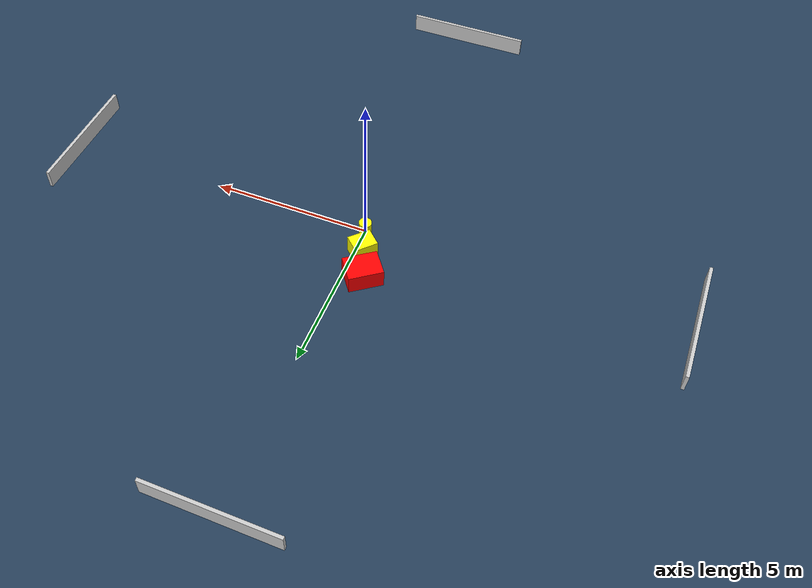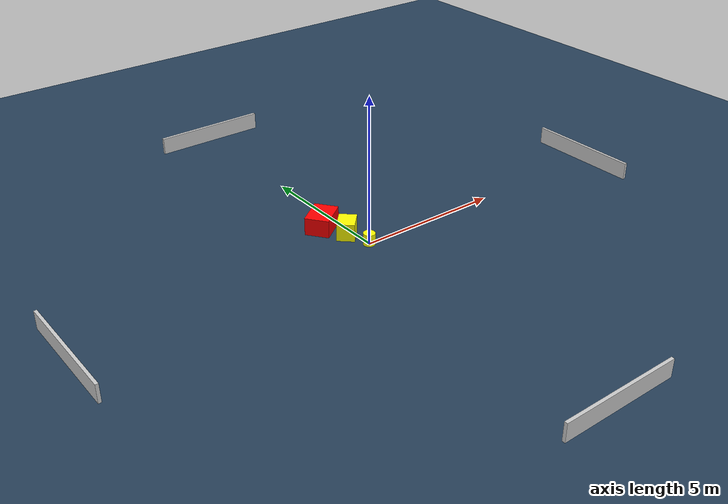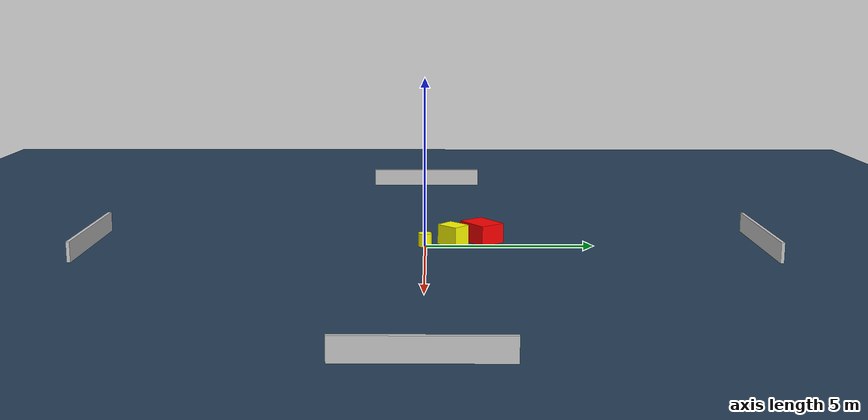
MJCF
<?xml version="1.0" ?>
<mujoco model="generated_environment">
  <option timestep="0.01" integrator="RK4" cone="elliptic"/>
  <default>
    <geom density="1"/>
  </default>
  <asset>
    <texture builtin="gradient" height="3072" name="skybox" rgb1="0.3 0.5 0.7" rgb2="0 0 0" type="skybox" width="512"/>
    <texture builtin="checker" height="300" name="groundplane" rgb1="0.2 0.3 0.4" rgb2="0.1 0.2 0.3" type="2d" width="300"/>
    <material name="groundplane" reflectance="0.2" texrepeat="5 5" texture="groundplane"/>
  </asset>
  <worldbody>
    <light dir="0 0 -1" directional="true" pos="0 0 1.5"/>
    <geom condim="3" friction="0.5 0.005 0.001" material="groundplane" name="floor" pos="0 0 0" size="0 0 0.05" type="plane"/>
    <body name="walls">
      <geom name="wall_1" condim="4" pos="-10.0 0.0 0.3" rgba="0.800000011920929 0.800000011920929 0.800000011920929 1.0" size="0.05 2.0 0.3" type="box"/>
      <geom name="wall_2" condim="4" pos="10.0 0.0 0.3" rgba="0.800000011920929 0.800000011920929 0.800000011920929 1.0" size="0.05 2.0 0.3" type="box"/>
      <geom name="wall_3" condim="4" pos="0.0 -10.0 0.3" rgba="0.800000011920929 0.800000011920929 0.800000011920929 1.0" size="2.0 0.05 0.3" type="box"/>
      <geom name="wall_4" condim="4" pos="0.0 10.0 0.3" rgba="0.800000011920929 0.800000011920929 0.800000011920929 1.0" size="2.0 0.05 0.3" type="box"/>
    </body>
    <body name="robot">
      <joint name="joint_x" type="slide" pos="0 0 0" axis="1 0 0"/>
      <joint name="joint_y" type="slide" pos="0 0 0" axis="0 1 0"/>
      <geom name="robot" type="cylinder" pos="0.0 0.0 0.2" size="0.2 0.2 0.0" mass="5.0" friction="1.0 0.005 0.0001" condim="4" rgba="1.0 1.0 0.0 1.0"/>
    </body>
    <body name="obstacle_1_movable">
      <geom name="obstacle_1_movable" condim="4" pos="-0.25448957550436485 0.8407085692526899 0.3" euler="0 0 46.72694952780838" friction="0.0 0.005 0.001" rgba="1.0 1.0 0.0 1.0" size="0.362599384826945 0.2949893468198091 0.3" type="box" mass="0.1"/>
      <joint type="free"/>
    </body>
    <body name="obstacle_2_static">
      <geom name="obstacle_2_static" condim="4" pos="-0.6153877396877302 1.7143321571041328 0.3" euler="0 0 126.58561569931764" friction="0.0 0.005 0.001" rgba="1.0 0.0 0.0 1.0" size="0.40773602996954694 0.5315164632866827 0.3" type="box"/>
    </body>
  </worldbody>
  <actuator>
    <motor name="actuator_x" joint="joint_x" gear="1" ctrlrange="-1 1"/>
    <motor name="actuator_y" joint="joint_y" gear="1" ctrlrange="-1 1"/>
  </actuator>
</mujoco>
